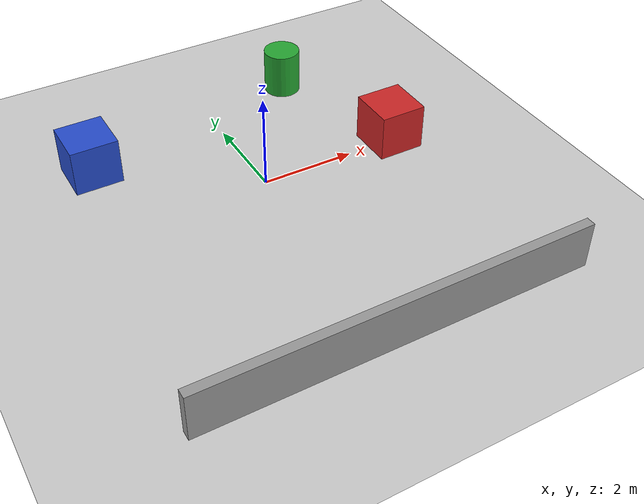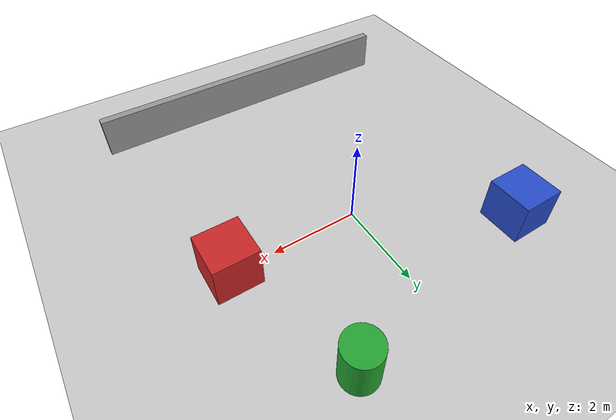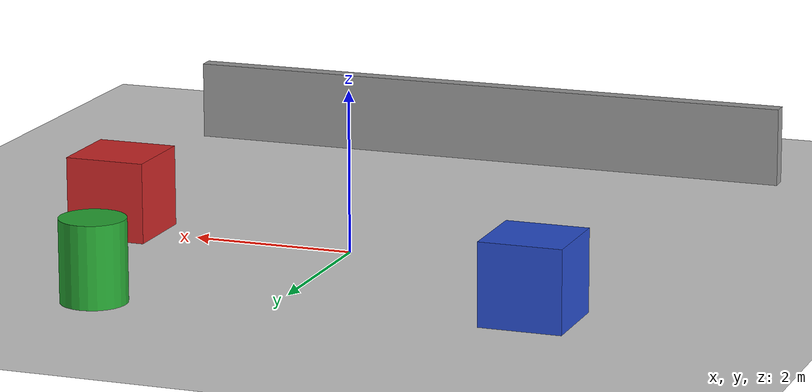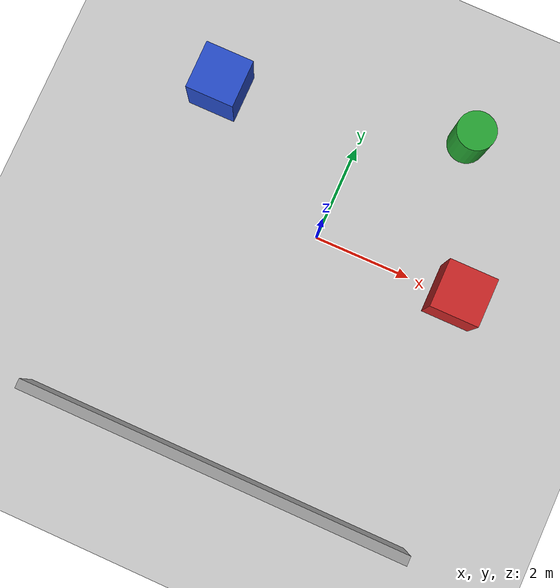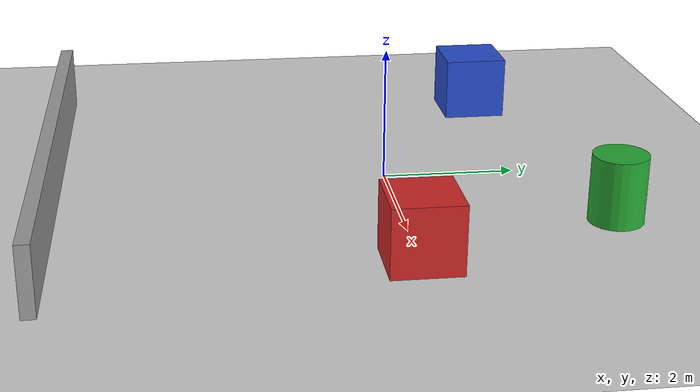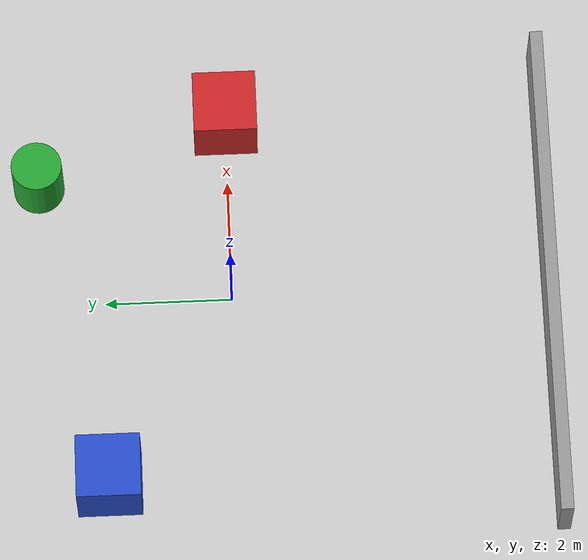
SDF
<?xml version="1.0" ?>
<sdf version="1.6">
  <world name="scout_world">

    <!-- Physics -->
    <physics type="ode">
      <real_time_update_rate>1000.0</real_time_update_rate>
      <max_step_size>0.001</max_step_size>
      <real_time_factor>1</real_time_factor>
    </physics>

    <!-- Required Gazebo plugins -->
    <plugin name="gazebo_ros_state" filename="libgazebo_ros_state.so"/>

    <!-- Lighting -->
    <include>
      <uri>model://sun</uri>
    </include>

    <!-- Ground plane -->
    <include>
      <uri>model://ground_plane</uri>
    </include>

    <!-- ── Obstacles ─────────────────────────────────── -->

    <!-- Red box -->
    <model name="box_1">
      <static>true</static>
      <pose>3 0 0.5 0 0 0</pose>
      <link name="link">
        <collision name="col">
          <geometry><box><size>1 1 1</size></box></geometry>
        </collision>
        <visual name="vis">
          <geometry><box><size>1 1 1</size></box></geometry>
          <material>
            <script>
              <uri>file://media/materials/scripts/gazebo.material</uri>
              <name>Gazebo/Red</name>
            </script>
          </material>
        </visual>
      </link>
    </model>

    <!-- Blue box -->
    <model name="box_2">
      <static>true</static>
      <pose>-3 2 0.5 0 0 0</pose>
      <link name="link">
        <collision name="col">
          <geometry><box><size>1 1 1</size></box></geometry>
        </collision>
        <visual name="vis">
          <geometry><box><size>1 1 1</size></box></geometry>
          <material>
            <script>
              <uri>file://media/materials/scripts/gazebo.material</uri>
              <name>Gazebo/Blue</name>
            </script>
          </material>
        </visual>
      </link>
    </model>

    <!-- Green cylinder -->
    <model name="cylinder_1">
      <static>true</static>
      <pose>2 3 0.5 0 0 0</pose>
      <link name="link">
        <collision name="col">
          <geometry>
            <cylinder><radius>0.4</radius><length>1.0</length></cylinder>
          </geometry>
        </collision>
        <visual name="vis">
          <geometry>
            <cylinder><radius>0.4</radius><length>1.0</length></cylinder>
          </geometry>
          <material>
            <script>
              <uri>file://media/materials/scripts/gazebo.material</uri>
              <name>Gazebo/Green</name>
            </script>
          </material>
        </visual>
      </link>
    </model>

    <!-- Wall -->
    <model name="wall_1">
      <static>true</static>
      <pose>0 -5 0.5 0 0 0</pose>
      <link name="link">
        <collision name="col">
          <geometry><box><size>8 0.2 1</size></box></geometry>
        </collision>
        <visual name="vis">
          <geometry><box><size>8 0.2 1</size></box></geometry>
          <material>
            <script>
              <uri>file://media/materials/scripts/gazebo.material</uri>
              <name>Gazebo/Grey</name>
            </script>
          </material>
        </visual>
      </link>
    </model>

  </world>
</sdf>
